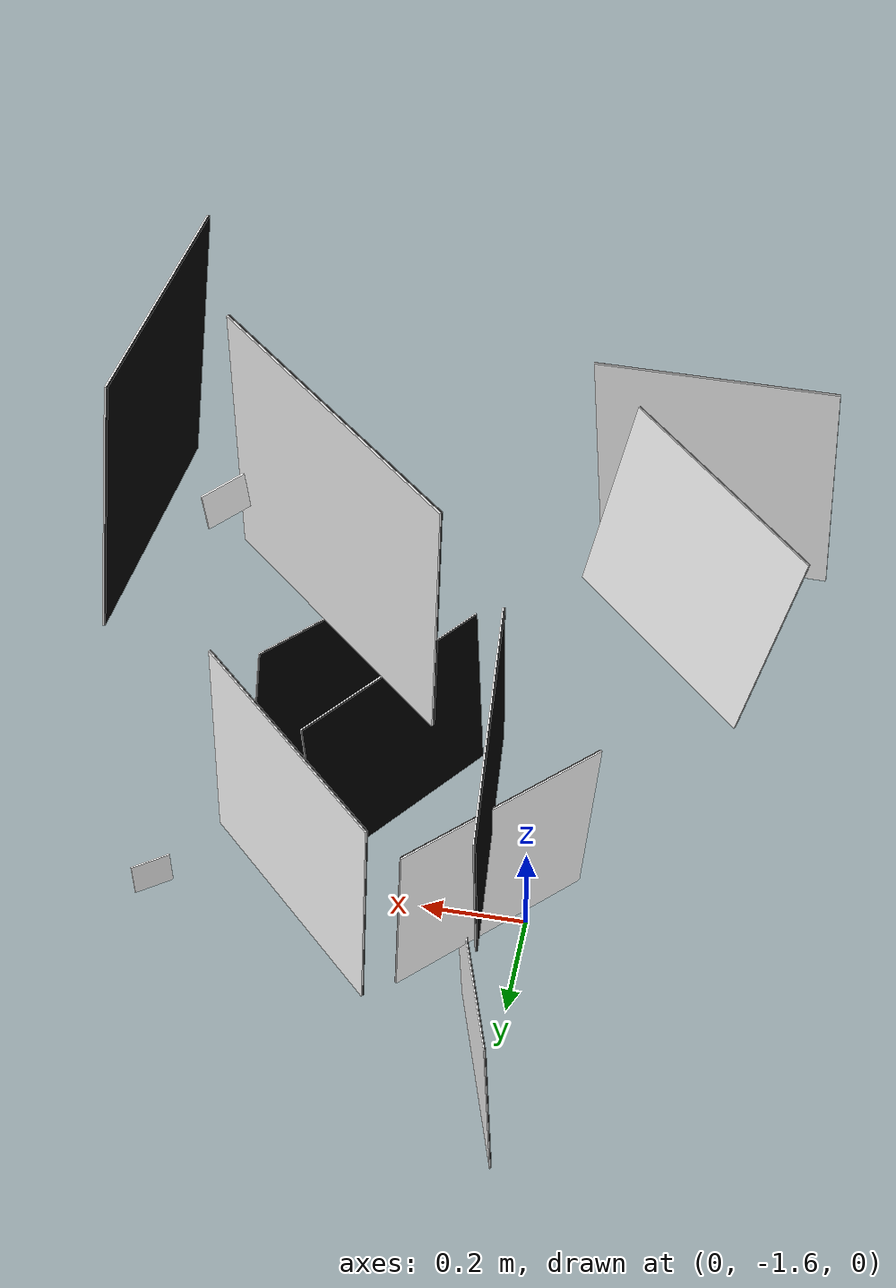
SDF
<sdf version="1.7">
 <world name="apple_orchard_world">
  <plugin filename="gz-sim-physics-system" name="gz::sim::systems::Physics"/>
  <plugin filename="gz-sim-user-commands-system" name="gz::sim::systems::UserCommands"/>
  <plugin filename="gz-sim-scene-broadcaster-system" name="gz::sim::systems::SceneBroadcaster"/>
  <plugin filename="gz-sim-contact-system" name="gz::sim::systems::Contact"/>
  <plugin filename="gz-sim-sensors-system" name="gz::sim::systems::Sensors">
   <render_engine>ogre2</render_engine>
  </plugin>
  <physics type="ode">
   <max_step_size>0.01</max_step_size>
   <real_time_factor>1</real_time_factor>
   <real_time_update_rate>1000</real_time_update_rate>
  </physics>
  <gravity>0 0 -9.8</gravity>
  <scene>
   <ambient>0.5 0.5 0.5 1</ambient>
   <background>0.3 0.7 0.9 1</background>
   <grid>false</grid>
   <sky><clouds><speed>12</speed></clouds></sky>
   <shadows>true</shadows>
  </scene>
  <light name="sun" type="directional">
   <pose>0 0 10 0 -0 0</pose>
   <intensity>1</intensity>
   <direction>-0.5 0.1 -0.9</direction>
   <diffuse>0.8 0.8 0.8 1</diffuse>
   <specular>0.2 0.2 0.2 1</specular>
   <attenuation>
    <range>1000</range>
    <linear>0.01</linear>
    <constant>0.90000000000000002</constant>
    <quadratic>0.001</quadratic>
   </attenuation>
   <spot><inner_angle>0</inner_angle><outer_angle>0</outer_angle><falloff>0</falloff></spot>
  </light>
  <include>
   <uri>model://aruco_marker_0</uri>
   <name>aruco_marker_0</name>
   <pose>0.341502 -0.84426 1.03301 2.22184 -1.53291 3.14159</pose>
  </include>
  <include>
   <uri>model://aruco_marker_1</uri>
   <name>aruco_marker_1</name>
   <pose>0.182882 -0.870869 1.6506 -0.75098 1.41216 -1.49943</pose>
  </include>
  <include>
   <uri>model://aruco_marker_2</uri>
   <name>aruco_marker_2</name>
   <pose>0.305338 -1.54683 0.648613 2.48048 1.42636 0.290812</pose>
  </include>
  <include>
   <uri>model://aruco_marker_3</uri>
   <name>aruco_marker_3</name>
   <pose>-0.260066 -1.66666 1.08042 -0.222979 -1.50809 0.121704</pose>
  </include>
  <include>
   <uri>model://aruco_marker_4</uri>
   <name>aruco_marker_4</name>
   <pose>0.010699 -1.16803 0.31541 -1.23988 -1.55424 -0</pose>
  </include>
  <include>
   <uri>model://aruco_marker_5</uri>
   <name>aruco_marker_5</name>
   <pose>0.202915 -0.966472 1.00855 2.40601 -1.49739 3.14159</pose>
  </include>
  <include>
   <uri>model://aruco_marker_6</uri>
   <name>aruco_marker_6</name>
   <pose>-0.025255 -1.15114 0.929268 3.00542 -1.33988 1.78976</pose>
  </include>
  <include>
   <uri>model://aruco_marker_7</uri>
   <name>aruco_marker_7</name>
   <pose>0.187773 -1.46147 0.622739 2.75906 -1.53574 1.30621</pose>
  </include>
  <include>
   <uri>model://aruco_marker_8</uri>
   <name>aruco_marker_8</name>
   <pose>0.105939 -0.97357 1.53616 -2.93439 -1.45497 2.26283</pose>
  </include>
  <include>
   <uri>model://aruco_marker_9</uri>
   <name>aruco_marker_9</name>
   <pose>0.370252 -1.15832 1.49449 1.24899 -1.40978 -2.84137</pose>
  </include>
  <include>
   <uri>model://aruco_marker_10</uri>
   <name>aruco_marker_10</name>
   <pose>-0.24391 -1.53572 1.00738 2.45804 -1.36597 3.14159</pose>
  </include>
  <include>
   <uri>model://aruco_marker_11</uri>
   <name>aruco_marker_11</name>
   <pose>-0.019926 -1.22235 0.645912 -1.6223 -1.46128 2.42265</pose>
  </include>
 </world>
</sdf>

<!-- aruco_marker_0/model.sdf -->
<sdf version="1.9">
  <model name="aruco_marker_0">
    <static>true</static>

    <link name="link">
      <!-- initial pose (you’ll move it in GUI) -->
      <pose>0 0 0 0 0 0</pose>

      <visual name="visual">
        <cast_shadows>false</cast_shadows>

        <geometry>
          <!-- marker physical size in meters -->
          <box><size>0.05 0.05 0.002</size></box>
        </geometry>

        <material>
          <ambient>1 1 1 1</ambient>
          <diffuse>1 1 1 1</diffuse>
          <specular>0 0 0 1</specular>
          <!-- slight emissive to help with detection in shadows, but not too much -->
          <emissive>0.1 0.1 0.1 1</emissive>
          <pbr>
            <metal>
              <albedo_map>../tree_fiducials/materials/textures/aruco_DICT_4X4_50_id0000.png</albedo_map>
              <metalness>0.0</metalness>
              <roughness>1.0</roughness>
            </metal>
          </pbr>
        </material>
      </visual>

      <!-- no collision needed if you only want it visible -->
    </link>
  </model>
</sdf>

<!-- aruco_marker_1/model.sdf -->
<sdf version="1.9">
  <model name="aruco_marker_1">
    <static>true</static>

    <link name="link">
      <!-- initial pose (you’ll move it in GUI) -->
      <pose>0 0 0 0 0 0</pose>

      <visual name="visual">
        <cast_shadows>false</cast_shadows>

        <geometry>
          <!-- marker physical size in meters -->
          <box><size>0.05 0.05 0.002</size></box>
        </geometry>

        <material>
          <ambient>1 1 1 1</ambient>
          <diffuse>1 1 1 1</diffuse>
          <specular>0 0 0 1</specular>
          <!-- slight emissive to help with detection in shadows, but not too much -->
          <emissive>0.1 0.1 0.1 1</emissive>
          <pbr>
            <metal>
              <albedo_map>../tree_fiducials/materials/textures/aruco_DICT_4X4_50_id0001.png</albedo_map>
              <metalness>0.0</metalness>
              <roughness>1.0</roughness>
            </metal>
          </pbr>
        </material>
      </visual>

      <!-- no collision needed if you only want it visible -->
    </link>
  </model>
</sdf>

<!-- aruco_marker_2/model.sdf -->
<sdf version="1.9">
  <model name="aruco_marker_2">
    <static>true</static>

    <link name="link">
      <visual name="front">
        <pose>0 0 0 0 0 0</pose>
        <geometry>
          <box>
            <size>0.35 0.002 0.35</size>
          </box>
        </geometry>

        <material>
          <ambient>1 1 1 1</ambient>
          <diffuse>1 1 1 1</diffuse>
          <specular>0.1 0.1 0.1 1</specular>
          <emissive>0 0 0 1</emissive>

          <pbr>
            <metal>
              <albedo_map>
                model://aruco/aruco_marker_2/materials/textures/marker_2.png
              </albedo_map>
              <emissive_map>
                model://aruco/aruco_marker_2/materials/textures/marker_2.png
              </emissive_map>
            </metal>
          </pbr>
        </material>
      </visual>

      <visual name="back">
        <pose>0 -0.002 0 0 0 3.1416</pose>
        <geometry>
          <box>
            <size>0.35 0.002 0.35</size>
          </box>
        </geometry>
        <material>
          <ambient>0 0 0 1</ambient>
          <diffuse>0 0 0 1</diffuse>
        </material>
      </visual>

    </link>

  </model>
</sdf>

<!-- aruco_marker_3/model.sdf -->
<sdf version="1.9">
  <model name="aruco_marker_3">
    <static>true</static>

    <link name="link">
      <visual name="front">
        <pose>0 0 0 0 0 0</pose>
        <geometry>
          <box>
            <size>0.35 0.002 0.35</size>
          </box>
        </geometry>

        <material>
          <ambient>1 1 1 1</ambient>
          <diffuse>1 1 1 1</diffuse>
          <specular>0.1 0.1 0.1 1</specular>
          <emissive>0 0 0 1</emissive>

          <pbr>
            <metal>
              <albedo_map>
                model://aruco/aruco_marker_3/materials/textures/marker_3.png
              </albedo_map>
              <emissive_map>
                model://aruco/aruco_marker_3/materials/textures/marker_3.png
              </emissive_map>
            </metal>
          </pbr>
        </material>
      </visual>

      <visual name="back">
        <pose>0 -0.002 0 0 0 3.1416</pose>
        <geometry>
          <box>
            <size>0.35 0.002 0.35</size>
          </box>
        </geometry>
        <material>
          <ambient>0 0 0 1</ambient>
          <diffuse>0 0 0 1</diffuse>
        </material>
      </visual>

    </link>

  </model>
</sdf>

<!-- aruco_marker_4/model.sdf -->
<sdf version="1.9">
  <model name="aruco_marker_4">
    <static>true</static>

    <link name="link">
      <visual name="front">
        <pose>0 0 0 0 0 0</pose>
        <geometry>
          <box>
            <size>0.35 0.002 0.35</size>
          </box>
        </geometry>

        <material>
          <ambient>1 1 1 1</ambient>
          <diffuse>1 1 1 1</diffuse>
          <specular>0.1 0.1 0.1 1</specular>
          <emissive>0 0 0 1</emissive>

          <pbr>
            <metal>
              <albedo_map>
                model://aruco/aruco_marker_4/materials/textures/marker_4.png
              </albedo_map>
              <emissive_map>
                model://aruco/aruco_marker_4/materials/textures/marker_4.png
              </emissive_map>
            </metal>
          </pbr>
        </material>
      </visual>

      <visual name="back">
        <pose>0 -0.002 0 0 0 3.1416</pose>
        <geometry>
          <box>
            <size>0.35 0.002 0.35</size>
          </box>
        </geometry>
        <material>
          <ambient>0 0 0 1</ambient>
          <diffuse>0 0 0 1</diffuse>
        </material>
      </visual>

    </link>

  </model>
</sdf>

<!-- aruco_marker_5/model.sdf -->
<sdf version="1.9">
  <model name="aruco_marker_5">
    <static>true</static>

    <link name="link">
      <visual name="front">
        <pose>0 0 0 0 0 0</pose>
        <geometry>
          <box>
            <size>0.35 0.002 0.35</size>
          </box>
        </geometry>

        <material>
          <ambient>1 1 1 1</ambient>
          <diffuse>1 1 1 1</diffuse>
          <specular>0.1 0.1 0.1 1</specular>
          <emissive>0 0 0 1</emissive>

          <pbr>
            <metal>
              <albedo_map>
                model://aruco/aruco_marker_5/materials/textures/marker_5.png
              </albedo_map>
              <emissive_map>
                model://aruco/aruco_marker_5/materials/textures/marker_5.png
              </emissive_map>
            </metal>
          </pbr>
        </material>
      </visual>

      <visual name="back">
        <pose>0 -0.002 0 0 0 3.1416</pose>
        <geometry>
          <box>
            <size>0.35 0.002 0.35</size>
          </box>
        </geometry>
        <material>
          <ambient>0 0 0 1</ambient>
          <diffuse>0 0 0 1</diffuse>
        </material>
      </visual>

    </link>

  </model>
</sdf>

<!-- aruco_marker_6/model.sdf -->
<sdf version="1.9">
  <model name="aruco_marker_6">
    <static>true</static>

    <link name="link">
      <visual name="front">
        <pose>0 0 0 0 0 0</pose>
        <geometry>
          <box>
            <size>0.35 0.002 0.35</size>
          </box>
        </geometry>

        <material>
          <ambient>1 1 1 1</ambient>
          <diffuse>1 1 1 1</diffuse>
          <specular>0.1 0.1 0.1 1</specular>
          <emissive>0 0 0 1</emissive>

          <pbr>
            <metal>
              <albedo_map>
                model://aruco/aruco_marker_6/materials/textures/marker_6.png
              </albedo_map>
              <emissive_map>
                model://aruco/aruco_marker_6/materials/textures/marker_6.png
              </emissive_map>
            </metal>
          </pbr>
        </material>
      </visual>

      <visual name="back">
        <pose>0 -0.002 0 0 0 3.1416</pose>
        <geometry>
          <box>
            <size>0.35 0.002 0.35</size>
          </box>
        </geometry>
        <material>
          <ambient>0 0 0 1</ambient>
          <diffuse>0 0 0 1</diffuse>
        </material>
      </visual>

    </link>

  </model>
</sdf>

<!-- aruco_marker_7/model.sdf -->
<sdf version="1.9">
  <model name="aruco_marker_7">
    <static>true</static>

    <link name="link">
      <visual name="front">
        <pose>0 0 0 0 0 0</pose>
        <geometry>
          <box>
            <size>0.35 0.002 0.35</size>
          </box>
        </geometry>

        <material>
          <ambient>1 1 1 1</ambient>
          <diffuse>1 1 1 1</diffuse>
          <specular>0.1 0.1 0.1 1</specular>
          <emissive>0 0 0 1</emissive>

          <pbr>
            <metal>
              <albedo_map>
                model://aruco/aruco_marker_7/materials/textures/marker_7.png
              </albedo_map>
              <emissive_map>
                model://aruco/aruco_marker_7/materials/textures/marker_7.png
              </emissive_map>
            </metal>
          </pbr>
        </material>
      </visual>

      <visual name="back">
        <pose>0 -0.002 0 0 0 3.1416</pose>
        <geometry>
          <box>
            <size>0.35 0.002 0.35</size>
          </box>
        </geometry>
        <material>
          <ambient>0 0 0 1</ambient>
          <diffuse>0 0 0 1</diffuse>
        </material>
      </visual>

    </link>

  </model>
</sdf>

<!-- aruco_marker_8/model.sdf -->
<sdf version="1.9">
  <model name="aruco_marker_8">
    <static>true</static>

    <link name="link">
      <visual name="front">
        <pose>0 0 0 0 0 0</pose>
        <geometry>
          <box>
            <size>0.35 0.002 0.35</size>
          </box>
        </geometry>

        <material>
          <ambient>1 1 1 1</ambient>
          <diffuse>1 1 1 1</diffuse>
          <specular>0.1 0.1 0.1 1</specular>
          <emissive>0 0 0 1</emissive>

          <pbr>
            <metal>
              <albedo_map>
                model://aruco/aruco_marker_8/materials/textures/marker_8.png
              </albedo_map>
              <emissive_map>
                model://aruco/aruco_marker_8/materials/textures/marker_8.png
              </emissive_map>
            </metal>
          </pbr>
        </material>
      </visual>

      <visual name="back">
        <pose>0 -0.002 0 0 0 3.1416</pose>
        <geometry>
          <box>
            <size>0.35 0.002 0.35</size>
          </box>
        </geometry>
        <material>
          <ambient>0 0 0 1</ambient>
          <diffuse>0 0 0 1</diffuse>
        </material>
      </visual>

    </link>

  </model>
</sdf>

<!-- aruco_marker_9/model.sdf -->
<sdf version="1.9">
  <model name="aruco_marker_9">
    <static>true</static>

    <link name="link">
      <visual name="front">
        <pose>0 0 0 0 0 0</pose>
        <geometry>
          <box>
            <size>0.35 0.002 0.35</size>
          </box>
        </geometry>

        <material>
          <ambient>1 1 1 1</ambient>
          <diffuse>1 1 1 1</diffuse>
          <specular>0.1 0.1 0.1 1</specular>
          <emissive>0 0 0 1</emissive>

          <pbr>
            <metal>
              <albedo_map>
                model://aruco/aruco_marker_9/materials/textures/marker_9.png
              </albedo_map>
              <emissive_map>
                model://aruco/aruco_marker_9/materials/textures/marker_9.png
              </emissive_map>
            </metal>
          </pbr>
        </material>
      </visual>

      <visual name="back">
        <pose>0 -0.002 0 0 0 3.1416</pose>
        <geometry>
          <box>
            <size>0.35 0.002 0.35</size>
          </box>
        </geometry>
        <material>
          <ambient>0 0 0 1</ambient>
          <diffuse>0 0 0 1</diffuse>
        </material>
      </visual>

    </link>

  </model>
</sdf>

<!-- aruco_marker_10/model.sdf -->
<sdf version="1.9">
  <model name="aruco_marker_10">
    <static>true</static>

    <link name="link">
      <visual name="front">
        <pose>0 0 0 0 0 0</pose>
        <geometry>
          <box>
            <size>0.35 0.002 0.35</size>
          </box>
        </geometry>

        <material>
          <ambient>1 1 1 1</ambient>
          <diffuse>1 1 1 1</diffuse>
          <specular>0.1 0.1 0.1 1</specular>
          <emissive>0 0 0 1</emissive>

          <pbr>
            <metal>
              <albedo_map>
                model://aruco/aruco_marker_10/materials/textures/marker_10.png
              </albedo_map>
              <emissive_map>
                model://aruco/aruco_marker_10/materials/textures/marker_10.png
              </emissive_map>
            </metal>
          </pbr>
        </material>
      </visual>

      <visual name="back">
        <pose>0 -0.002 0 0 0 3.1416</pose>
        <geometry>
          <box>
            <size>0.35 0.002 0.35</size>
          </box>
        </geometry>
        <material>
          <ambient>0 0 0 1</ambient>
          <diffuse>0 0 0 1</diffuse>
        </material>
      </visual>

    </link>

  </model>
</sdf>

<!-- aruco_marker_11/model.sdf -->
<sdf version="1.9">
  <model name="aruco_marker_11">
    <static>true</static>

    <link name="link">
      <visual name="front">
        <pose>0 0 0 0 0 0</pose>
        <geometry>
          <box>
            <size>0.35 0.002 0.35</size>
          </box>
        </geometry>

        <material>
          <ambient>1 1 1 1</ambient>
          <diffuse>1 1 1 1</diffuse>
          <specular>0.1 0.1 0.1 1</specular>
          <emissive>0 0 0 1</emissive>

          <pbr>
            <metal>
              <albedo_map>
                model://aruco/aruco_marker_11/materials/textures/marker_11.png
              </albedo_map>
              <emissive_map>
                model://aruco/aruco_marker_11/materials/textures/marker_11.png
              </emissive_map>
            </metal>
          </pbr>
        </material>
      </visual>

      <visual name="back">
        <pose>0 -0.002 0 0 0 3.1416</pose>
        <geometry>
          <box>
            <size>0.35 0.002 0.35</size>
          </box>
        </geometry>
        <material>
          <ambient>0 0 0 1</ambient>
          <diffuse>0 0 0 1</diffuse>
        </material>
      </visual>

    </link>

  </model>
</sdf>
